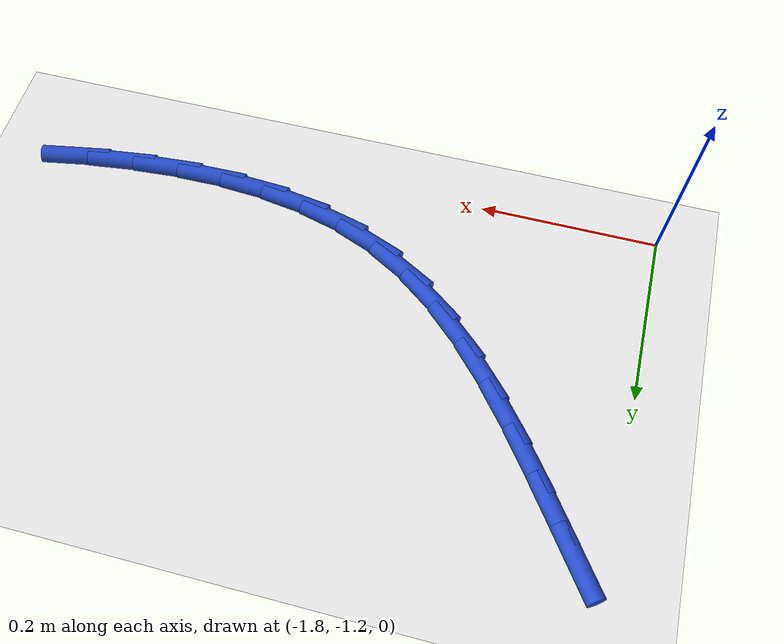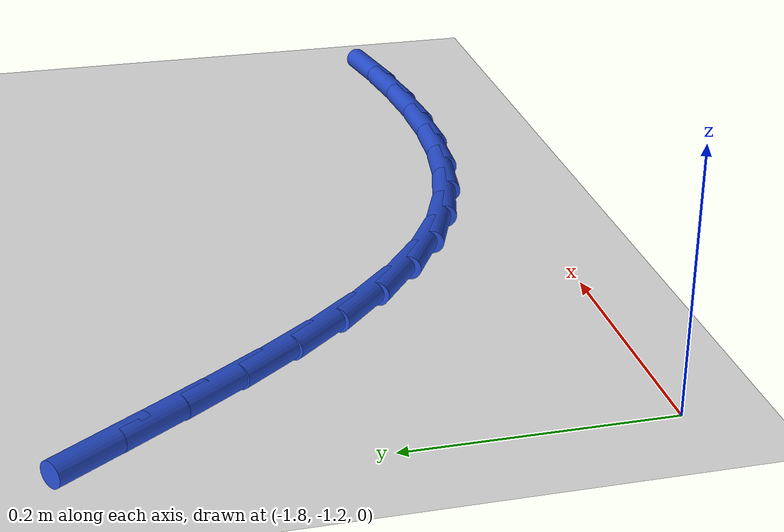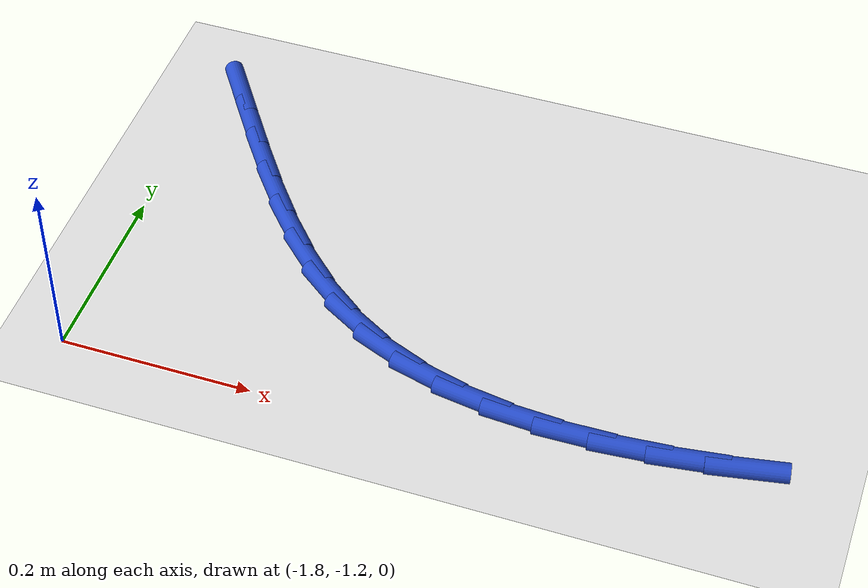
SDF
<sdf version="1.6">
 <world name="default">
  <model name="ground_plane">
   <static>1</static>
   <link name="link">
    <collision name="collision">
     <geometry><plane><normal>0 0 1</normal><size>100 100</size></plane></geometry>
     <surface><friction><ode><mu>100</mu><mu2>50</mu2></ode></friction></surface>
    </collision>
    <visual name="visual">
     <cast_shadows>0</cast_shadows>
     <geometry><plane><normal>0 0 1</normal><size>100 100</size></plane></geometry>
     <material>
      <script><uri>file://media/materials/scripts/gazebo.material</uri><name>Gazebo/WhiteGlow</name></script>
     </material>
    </visual>
   </link>
  </model>
  <model name="line">
   <link name="link_82">
    <pose>-1.7657475713587953 -0.8105041639783963 0.01 0 1.57 -0.971678010403664</pose>
    <collision name="collision">
     <geometry><cylinder><radius>0.01</radius><length>0.08</length></cylinder></geometry>
    </collision>
    <visual name="visual">
     <material>
      <script><name>Gazebo/Blue</name><uri>file://media/materials/scripts/gazebo.material</uri></script>
     </material>
     <geometry><cylinder><radius>0.01</radius><length>0.08</length></cylinder></geometry>
    </visual>
   </link>
   <link name="link_83">
    <pose>-1.7348270312392233 -0.8557862116992607 0.01 0 1.57 -0.9671719922045959</pose>
    <collision name="collision">
     <geometry><cylinder><radius>0.01</radius><length>0.08</length></cylinder></geometry>
    </collision>
    <visual name="visual">
     <material>
      <script><name>Gazebo/Blue</name><uri>file://media/materials/scripts/gazebo.material</uri></script>
     </material>
     <geometry><cylinder><radius>0.01</radius><length>0.08</length></cylinder></geometry>
    </visual>
   </link>
   <link name="link_84">
    <pose>-1.70381146162102 -0.9007708179369959 0.01 0 1.57 -0.9453317120403679</pose>
    <collision name="collision">
     <geometry><cylinder><radius>0.01</radius><length>0.08</length></cylinder></geometry>
    </collision>
    <visual name="visual">
     <material>
      <script><name>Gazebo/Blue</name><uri>file://media/materials/scripts/gazebo.material</uri></script>
     </material>
     <geometry><cylinder><radius>0.01</radius><length>0.08</length></cylinder></geometry>
    </visual>
   </link>
   <link name="link_85">
    <pose>-1.6721742488198732 -0.9445780746455386 0.01 0 1.57 -0.9050952137795003</pose>
    <collision name="collision">
     <geometry><cylinder><radius>0.01</radius><length>0.08</length></cylinder></geometry>
    </collision>
    <visual name="visual">
     <material>
      <script><name>Gazebo/Blue</name><uri>file://media/materials/scripts/gazebo.material</uri></script>
     </material>
     <geometry><cylinder><radius>0.01</radius><length>0.08</length></cylinder></geometry>
    </visual>
   </link>
   <link name="link_86">
    <pose>-1.6393887791514716 -0.9863280737788263 0.01 0 1.57 -0.8447293574709385</pose>
    <collision name="collision">
     <geometry><cylinder><radius>0.01</radius><length>0.08</length></cylinder></geometry>
    </collision>
    <visual name="visual">
     <material>
      <script><name>Gazebo/Blue</name><uri>file://media/materials/scripts/gazebo.material</uri></script>
     </material>
     <geometry><cylinder><radius>0.01</radius><length>0.08</length></cylinder></geometry>
    </visual>
   </link>
   <link name="link_87">
    <pose>-1.6049284389315068 -1.0251409072907947 0.01 0 1.57 -0.7621519918784596</pose>
    <collision name="collision">
     <geometry><cylinder><radius>0.01</radius><length>0.08</length></cylinder></geometry>
    </collision>
    <visual name="visual">
     <material>
      <script><name>Gazebo/Blue</name><uri>file://media/materials/scripts/gazebo.material</uri></script>
     </material>
     <geometry><cylinder><radius>0.01</radius><length>0.08</length></cylinder></geometry>
    </visual>
   </link>
   <link name="link_88">
    <pose>-1.5682666144756658 -1.060136667135381 0.01 0 1.57 -0.655677090041408</pose>
    <collision name="collision">
     <geometry><cylinder><radius>0.01</radius><length>0.08</length></cylinder></geometry>
    </collision>
    <visual name="visual">
     <material>
      <script><name>Gazebo/Blue</name><uri>file://media/materials/scripts/gazebo.material</uri></script>
     </material>
     <geometry><cylinder><radius>0.01</radius><length>0.08</length></cylinder></geometry>
    </visual>
   </link>
   <link name="link_89">
    <pose>-1.5288766920996384 -1.0904354452665215 0.01 0 1.57 -0.5254280965744424</pose>
    <collision name="collision">
     <geometry><cylinder><radius>0.01</radius><length>0.08</length></cylinder></geometry>
    </collision>
    <visual name="visual">
     <material>
      <script><name>Gazebo/Blue</name><uri>file://media/materials/scripts/gazebo.material</uri></script>
     </material>
     <geometry><cylinder><radius>0.01</radius><length>0.08</length></cylinder></geometry>
    </visual>
   </link>
   <link name="link_90">
    <pose>-1.4862337724804957 -1.115159466587748 0.01 0 1.57 -0.3849340642296518</pose>
    <collision name="collision">
     <geometry><cylinder><radius>0.01</radius><length>0.08</length></cylinder></geometry>
    </collision>
    <visual name="visual">
     <material>
      <script><name>Gazebo/Blue</name><uri>file://media/materials/scripts/gazebo.material</uri></script>
     </material>
     <geometry><cylinder><radius>0.01</radius><length>0.08</length></cylinder></geometry>
    </visual>
   </link>
   <link name="link_91">
    <pose>-1.4401377491334098 -1.1338350521049774 0.01 0 1.57 -0.25973536455226415</pose>
    <collision name="collision">
     <geometry><cylinder><radius>0.01</radius><length>0.08</length></cylinder></geometry>
    </collision>
    <visual name="visual">
     <material>
      <script><name>Gazebo/Blue</name><uri>file://media/materials/scripts/gazebo.material</uri></script>
     </material>
     <geometry><cylinder><radius>0.01</radius><length>0.08</length></cylinder></geometry>
    </visual>
   </link>
   <link name="link_92">
    <pose>-1.3910950512713807 -1.146867570291292 0.01 0 1.57 -0.15272869179246779</pose>
    <collision name="collision">
     <geometry><cylinder><radius>0.01</radius><length>0.08</length></cylinder></geometry>
    </collision>
    <visual name="visual">
     <material>
      <script><name>Gazebo/Blue</name><uri>file://media/materials/scripts/gazebo.material</uri></script>
     </material>
     <geometry><cylinder><radius>0.01</radius><length>0.08</length></cylinder></geometry>
    </visual>
   </link>
   <link name="link_93">
    <pose>-1.339704960355394 -1.1547779132000635 0.01 0 1.57 -0.062192397628152256</pose>
    <collision name="collision">
     <geometry><cylinder><radius>0.01</radius><length>0.08</length></cylinder></geometry>
    </collision>
    <visual name="visual">
     <material>
      <script><name>Gazebo/Blue</name><uri>file://media/materials/scripts/gazebo.material</uri></script>
     </material>
     <geometry><cylinder><radius>0.01</radius><length>0.08</length></cylinder></geometry>
    </visual>
   </link>
   <link name="link_94">
    <pose>-1.2865667578464357 -1.1580869728846637 0.01 0 1.57 0.014207436839021923</pose>
    <collision name="collision">
     <geometry><cylinder><radius>0.01</radius><length>0.08</length></cylinder></geometry>
    </collision>
    <visual name="visual">
     <material>
      <script><name>Gazebo/Blue</name><uri>file://media/materials/scripts/gazebo.material</uri></script>
     </material>
     <geometry><cylinder><radius>0.01</radius><length>0.08</length></cylinder></geometry>
    </visual>
   </link>
   <link name="link_95">
    <pose>-1.232279725205494 -1.1573156413984633 0.01 0 1.57 0.07881344377988213</pose>
    <collision name="collision">
     <geometry><cylinder><radius>0.01</radius><length>0.08</length></cylinder></geometry>
    </collision>
    <visual name="visual">
     <material>
      <script><name>Gazebo/Blue</name><uri>file://media/materials/scripts/gazebo.material</uri></script>
     </material>
     <geometry><cylinder><radius>0.01</radius><length>0.08</length></cylinder></geometry>
    </visual>
   </link>
   <link name="link_96">
    <pose>-1.1774431438935542 -1.152984810794834 0.01 0 1.57 0.13370851903333836</pose>
    <collision name="collision">
     <geometry><cylinder><radius>0.01</radius><length>0.08</length></cylinder></geometry>
    </collision>
    <visual name="visual">
     <material>
      <script><name>Gazebo/Blue</name><uri>file://media/materials/scripts/gazebo.material</uri></script>
     </material>
     <geometry><cylinder><radius>0.01</radius><length>0.08</length></cylinder></geometry>
    </visual>
   </link>
   <link name="link_97">
    <pose>-1.1226562953716028 -1.1456153731271472 0.01 0 1.57 0.18064126407352069</pose>
    <collision name="collision">
     <geometry><cylinder><radius>0.01</radius><length>0.08</length></cylinder></geometry>
    </collision>
    <visual name="visual">
     <material>
      <script><name>Gazebo/Blue</name><uri>file://media/materials/scripts/gazebo.material</uri></script>
     </material>
     <geometry><cylinder><radius>0.01</radius><length>0.08</length></cylinder></geometry>
    </visual>
   </link>
  </model>
 </world>
</sdf>
